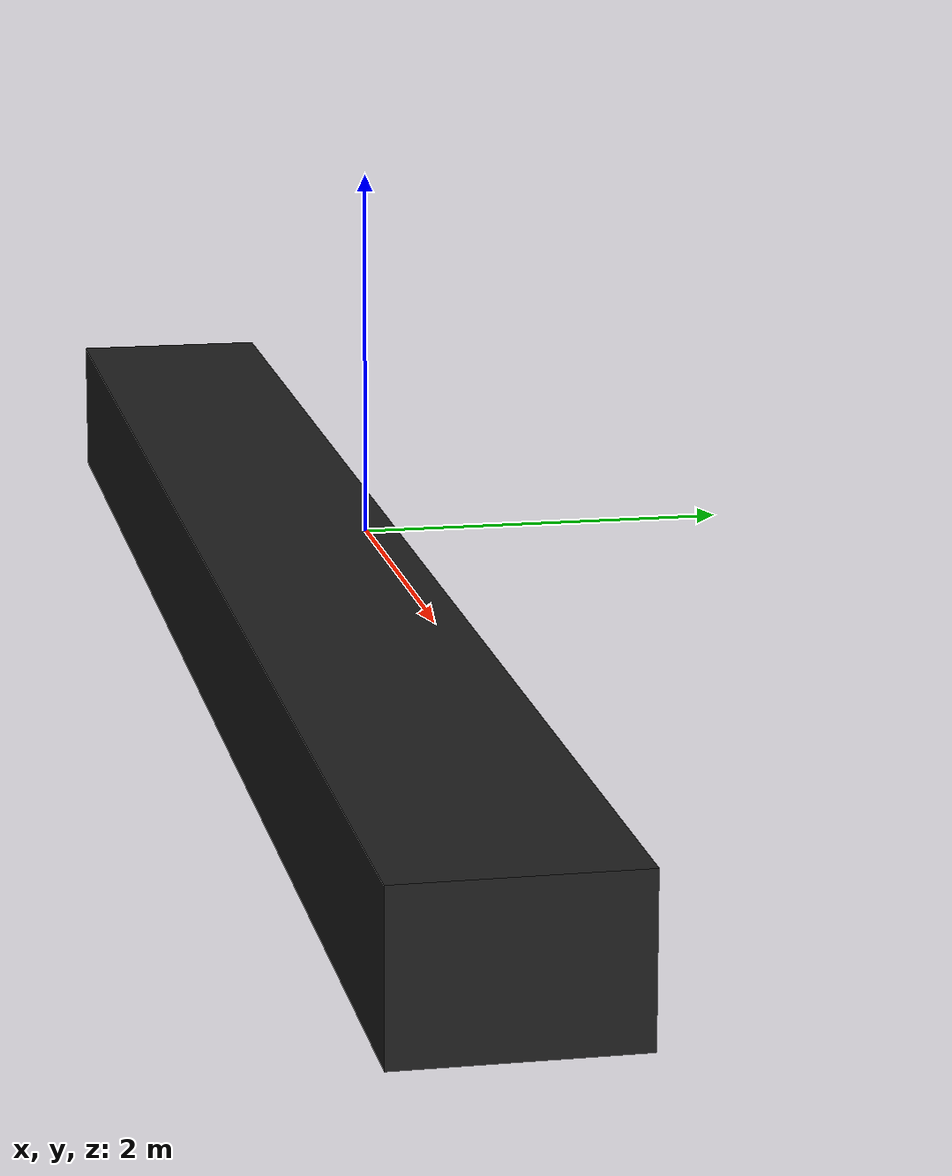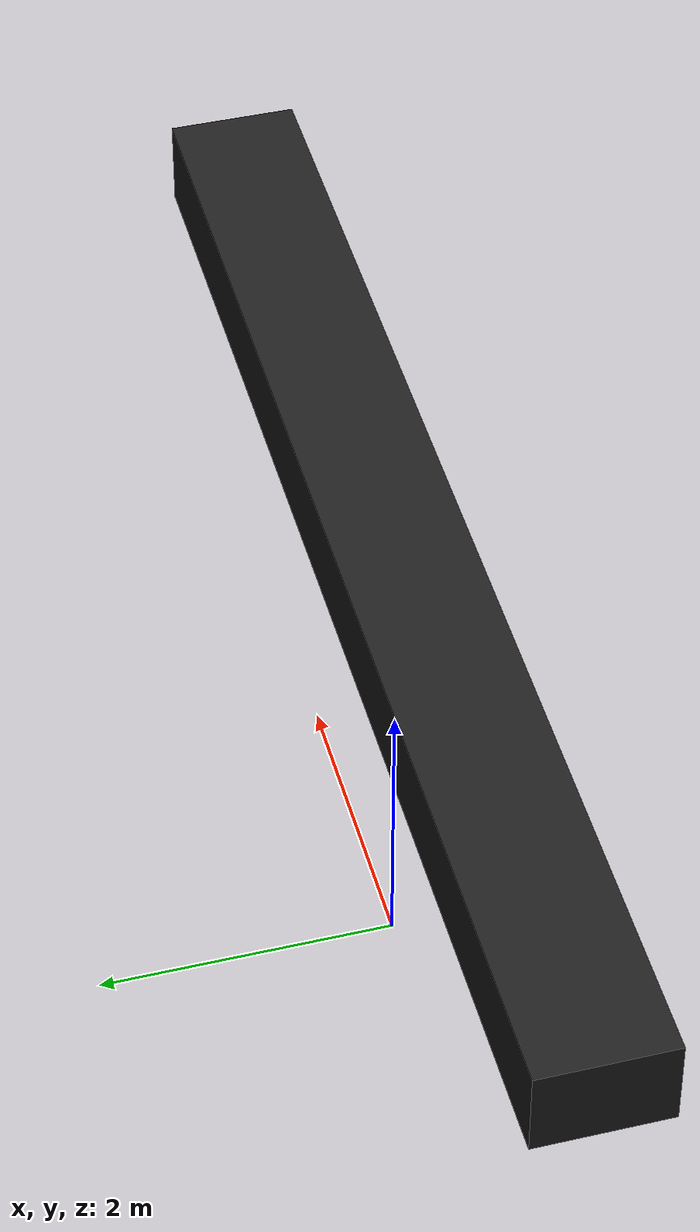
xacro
<?xml version="1.0"?>
<robot name="conveyor_belt_pallet">

<!-- conveyor belt is just a long flat box for objects to slide on it -->

<!-- world link -->
<link name="world"/>

<!-- base_link and its fixed joint -->
<joint name="fixed" type="fixed">
  <parent link="world"/>
  <child link="base_link"/>
</joint>

<link name="base_link">
  <collision>
    <origin xyz="3 -0.843470 0.35" rpy="0 0 0"/>
    <geometry>
      <box size="10 1 0.7"/>
    </geometry>
  </collision>

  <visual>
    <origin xyz="3 -0.843470 0.35" rpy="0 0 0"/>
    <geometry>
      <box size="10 1 0.7"/>
    </geometry>
  </visual>

  <inertial>
    <origin xyz="3 -0.843470 0.35" rpy="0 0 0"/>
    <mass value="1"/>
    <inertia
      ixx="1.0" ixy="0.0" ixz="0.0"
      iyy="1.0" iyz="0.0"
      izz="1.0"/>
  </inertial>
</link>

<gazebo reference="base_link">
  <mu1>0.01</mu1>
  <mu2>0.01</mu2>
  <material>Gazebo/FlatBlack</material>
</gazebo>

</robot>
